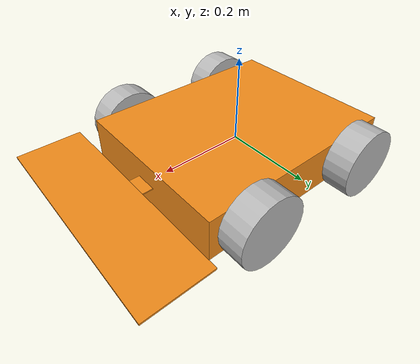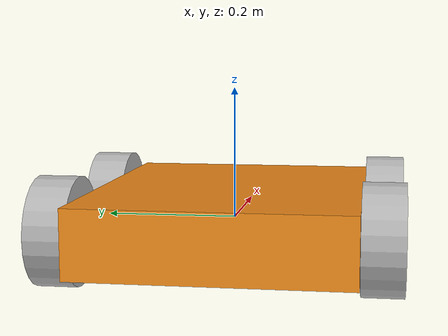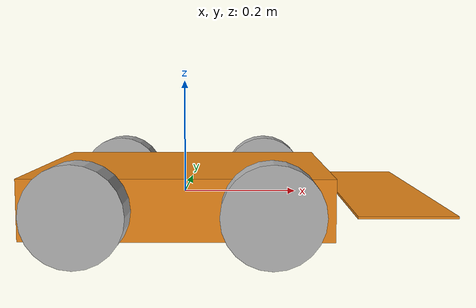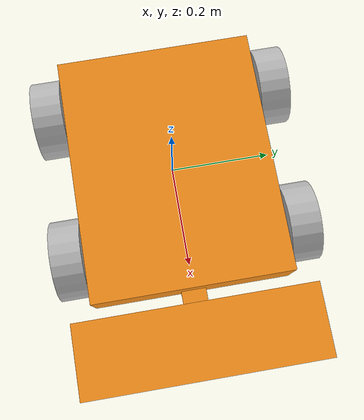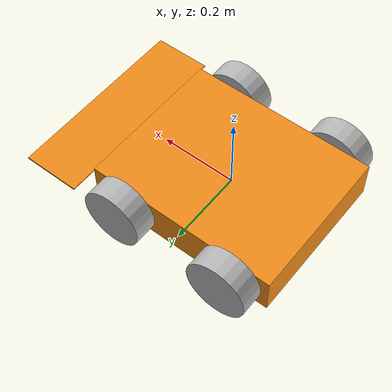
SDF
<sdf version='1.7'>
  <model name='robot_mine'>
    <link name='link_chassis'>
      <inertial>
        <pose>0 0 0.099991 0 -0 0</pose>
        <mass>11.001</mass>
        <inertia>
          <ixx>0.155843</ixx>
          <ixy>0</ixy>
          <ixz>0</ixz>
          <iyy>0.238343</iyy>
          <iyz>0</iyz>
          <izz>0.375833</izz>
        </inertia>
      </inertial>
      <collision name='link_chassis_fixed_joint_lump__collision_chassis_collision'>
        <pose>0 0 0 0 -0 0</pose>
        <geometry>
          <box>
            <size>0.5 0.4 0.1</size>
          </box>
        </geometry>
      </collision>
      <collision name='link_chassis_fixed_joint_lump__metal_detector_bar_collision_1'>
        <pose>0 0 0 0 -0 0</pose>
        <geometry>
          <box>
            <size>0.2 0.05 0.0025</size>
          </box>
        </geometry>
      </collision>
      <collision name='link_chassis_fixed_joint_lump__metal_detector_holder_collision_2'>
        <pose>0 0 0 0 -0 0</pose>
        <geometry>
          <box>
            <size>0.15 0.5 0.004</size>
          </box>
        </geometry>
      </collision>
      <collision name='link_chassis_fixed_joint_lump__imu_link_collision_3'>
        <pose>0 0 0 0 -0 0</pose>
        <geometry>
          <box>
            <size>0.02 0.02 0.02</size>
          </box>
        </geometry>
        <surface>
          <contact>
            <ode/>
          </contact>
          <friction>
            <ode/>
          </friction>
        </surface>
      </collision>
      <visual name='link_chassis_visual'>
        <pose>0 0 0 0 -0 0</pose>
        <geometry>
          <box>
            <size>0.5 0.4 0.1</size>
          </box>
        </geometry>
        <material>
          <script>
            <name>Gazebo/Orange</name>
            <uri>file://media/materials/scripts/gazebo.material</uri>
          </script>
        </material>
      </visual>
      <visual name='link_chassis_visual_1'>
        <pose>0.25 0 0 0 -0 0</pose>
        <geometry>
          <box>
            <size>0.2 0.05 0.0025</size>
          </box>
        </geometry>
        <material>
          <script>
            <name>Gazebo/Orange</name>
            <uri>file://media/materials/scripts/gazebo.material</uri>
          </script>
        </material>
      </visual>
      <visual name='link_chassis_visual_2'>
        <pose>0.35 0 0 0 -0 0</pose>
        <geometry>
          <box>
            <size>0.15 0.5 0.004</size>
          </box>
        </geometry>
        <material>
          <script>
            <name>Gazebo/Orange</name>
            <uri>file://media/materials/scripts/gazebo.material</uri>
          </script>
        </material>
      </visual>
      <visual name='link_chassis_fixed_joint_lump__imu_link_visual_3'>
        <pose>0 0 0 0 -0 0</pose>
        <geometry>
          <box>
            <size>0.02 0.02 0.02</size>
          </box>
        </geometry>
      </visual>
      <gravity>1</gravity>
      <sensor name='imu_sensor' type='imu'>
        <always_on>1</always_on>
        <update_rate>1000</update_rate>
        <visualize>1</visualize>
        <topic>__default_topic__</topic>
        <plugin name='imu_plugin' filename='libgazebo_ros_imu_sensor.so'>
          <topicName>imu_data</topicName>
          <bodyName>imu_sensor_link</bodyName>
          <updateRateHZ>10.0</updateRateHZ>
          <gaussianNoise>0.0</gaussianNoise>
          <xyzOffset>0 0 0</xyzOffset>
          <rpyOffset>0 0 0</rpyOffset>
        </plugin>
        <pose>0 0 0 0 -0 0</pose>
      </sensor>
    </link>
    <joint name='joint_back_left_wheel' type='revolute'>
      <pose relative_to='link_chassis'>-0.15 -0.23 0 0 -0 0</pose>
      <parent>link_chassis</parent>
      <child>link_back_left_wheel</child>
      <axis>
        <xyz>0 1 0</xyz>
        <limit>
          <effort>10000</effort>
          <velocity>1000</velocity>
          <lower>-1e+16</lower>
          <upper>1e+16</upper>
        </limit>
        <dynamics>
          <spring_reference>0</spring_reference>
          <spring_stiffness>0</spring_stiffness>
        </dynamics>
      </axis>
    </joint>
    <link name='link_back_left_wheel'>
      <pose relative_to='joint_back_left_wheel'>0 0 0 0 -0 0</pose>
      <inertial>
        <pose>0 0 0 0 1.5707 1.5707</pose>
        <mass>1</mass>
        <inertia>
          <ixx>0.0019</ixx>
          <ixy>0</ixy>
          <ixz>0</ixz>
          <iyy>0.0019</iyy>
          <iyz>0</iyz>
          <izz>0.0032</izz>
        </inertia>
      </inertial>
      <collision name='link_back_left_wheel_fixed_joint_lump__link_right_wheel_collision_collision'>
        <pose>0 0 0 -1.5707 1.5708 0</pose>
        <geometry>
          <cylinder>
            <length>0.06</length>
            <radius>0.08</radius>
          </cylinder>
        </geometry>
      </collision>
      <visual name='link_back_left_wheel_visual_visual'>
        <pose>0 0 0 -1.5707 1.5708 0</pose>
        <geometry>
          <cylinder>
            <length>0.06</length>
            <radius>0.08</radius>
          </cylinder>
        </geometry>
      </visual>
    </link>
    <joint name='joint_back_right_wheel' type='revolute'>
      <pose relative_to='link_chassis'>-0.15 0.23 0 0 -0 0</pose>
      <parent>link_chassis</parent>
      <child>link_back_right_wheel</child>
      <axis>
        <xyz>0 1 0</xyz>
        <limit>
          <effort>10000</effort>
          <velocity>1000</velocity>
          <lower>-1e+16</lower>
          <upper>1e+16</upper>
        </limit>
        <dynamics>
          <spring_reference>0</spring_reference>
          <spring_stiffness>0</spring_stiffness>
        </dynamics>
      </axis>
    </joint>
    <link name='link_back_right_wheel'>
      <pose relative_to='joint_back_right_wheel'>0 0 0 0 -0 0</pose>
      <inertial>
        <pose>0 0 0 0 1.5707 1.5707</pose>
        <mass>1</mass>
        <inertia>
          <ixx>0.0019</ixx>
          <ixy>0</ixy>
          <ixz>0</ixz>
          <iyy>0.0019</iyy>
          <iyz>0</iyz>
          <izz>0.0032</izz>
        </inertia>
      </inertial>
      <collision name='link_back_right_wheel_fixed_joint_lump__link_right_wheel_collision_collision'>
        <pose>0 0 0 -1.5707 1.5708 0</pose>
        <geometry>
          <cylinder>
            <length>0.06</length>
            <radius>0.08</radius>
          </cylinder>
        </geometry>
      </collision>
      <visual name='link_back_right_wheel_visual_visual'>
        <pose>0 0 0 -1.5707 1.5708 0</pose>
        <geometry>
          <cylinder>
            <length>0.06</length>
            <radius>0.08</radius>
          </cylinder>
        </geometry>
      </visual>
    </link>
    <joint name='joint_front_left_wheel' type='revolute'>
      <pose relative_to='link_chassis'>0.15 -0.23 0 0 -0 0</pose>
      <parent>link_chassis</parent>
      <child>link_front_left_wheel</child>
      <axis>
        <xyz>0 1 0</xyz>
        <limit>
          <effort>10000</effort>
          <velocity>1000</velocity>
          <lower>-1e+16</lower>
          <upper>1e+16</upper>
        </limit>
        <dynamics>
          <spring_reference>0</spring_reference>
          <spring_stiffness>0</spring_stiffness>
        </dynamics>
      </axis>
    </joint>
    <link name='link_front_left_wheel'>
      <pose relative_to='joint_front_left_wheel'>0 0 0 0 -0 0</pose>
      <inertial>
        <pose>0 0 0 0 1.5707 1.5707</pose>
        <mass>1</mass>
        <inertia>
          <ixx>0.0019</ixx>
          <ixy>0</ixy>
          <ixz>0</ixz>
          <iyy>0.0019</iyy>
          <iyz>0</iyz>
          <izz>0.0032</izz>
        </inertia>
      </inertial>
      <collision name='link_front_left_wheel_fixed_joint_lump__link_right_wheel_collision_collision'>
        <pose>0 0 0 -1.5707 1.5708 0</pose>
        <geometry>
          <cylinder>
            <length>0.06</length>
            <radius>0.08</radius>
          </cylinder>
        </geometry>
      </collision>
      <visual name='link_front_left_wheel_visual_visual'>
        <pose>0 0 0 -1.5707 1.5708 0</pose>
        <geometry>
          <cylinder>
            <length>0.06</length>
            <radius>0.08</radius>
          </cylinder>
        </geometry>
      </visual>
    </link>
    <joint name='joint_front_right_wheel' type='revolute'>
      <pose relative_to='link_chassis'>0.15 0.23 0 0 -0 0</pose>
      <parent>link_chassis</parent>
      <child>link_front_right_wheel</child>
      <axis>
        <xyz>0 1 0</xyz>
        <limit>
          <effort>10000</effort>
          <velocity>1000</velocity>
          <lower>-1e+16</lower>
          <upper>1e+16</upper>
        </limit>
        <dynamics>
          <spring_reference>0</spring_reference>
          <spring_stiffness>0</spring_stiffness>
        </dynamics>
      </axis>
    </joint>
    <link name='link_front_right_wheel'>
      <pose relative_to='joint_front_right_wheel'>0 0 0 0 -0 0</pose>
      <inertial>
        <pose>0 0 0 0 1.5707 1.5707</pose>
        <mass>1</mass>
        <inertia>
          <ixx>0.0019</ixx>
          <ixy>0</ixy>
          <ixz>0</ixz>
          <iyy>0.0019</iyy>
          <iyz>0</iyz>
          <izz>0.0032</izz>
        </inertia>
      </inertial>
      <collision name='link_front_right_wheel_fixed_joint_lump__link_right_wheel_collision_collision'>
        <pose>0 0 0 -1.5707 1.5708 0</pose>
        <geometry>
          <cylinder>
            <length>0.06</length>
            <radius>0.08</radius>
          </cylinder>
        </geometry>
      </collision>
      <visual name='link_front_right_wheel_visual_visual'>
        <pose>0 0 0 -1.5707 1.5708 0</pose>
        <geometry>
          <cylinder>
            <length>0.06</length>
            <radius>0.08</radius>
          </cylinder>
        </geometry>
      </visual>
    </link>
    <static>0</static>
    <plugin name='differential_drive_controller' filename='libgazebo_ros_diff_drive.so'>
      <legacyMode>0</legacyMode>
      <alwaysOn>1</alwaysOn>
      <updateRate>20</updateRate>
      <leftJoint>joint_left_wheel</leftJoint>
      <rightJoint>joint_right_wheel</rightJoint>
      <wheelSeparation>0.2</wheelSeparation>
      <wheelDiameter>0.2</wheelDiameter>
      <torque>0.1</torque>
      <commandTopic>cmd_vel</commandTopic>
      <odometryTopic>odom</odometryTopic>
      <odometryFrame>odom</odometryFrame>
      <robotBaseFrame>link_chassis</robotBaseFrame>
    </plugin>
  </model>
</sdf>
